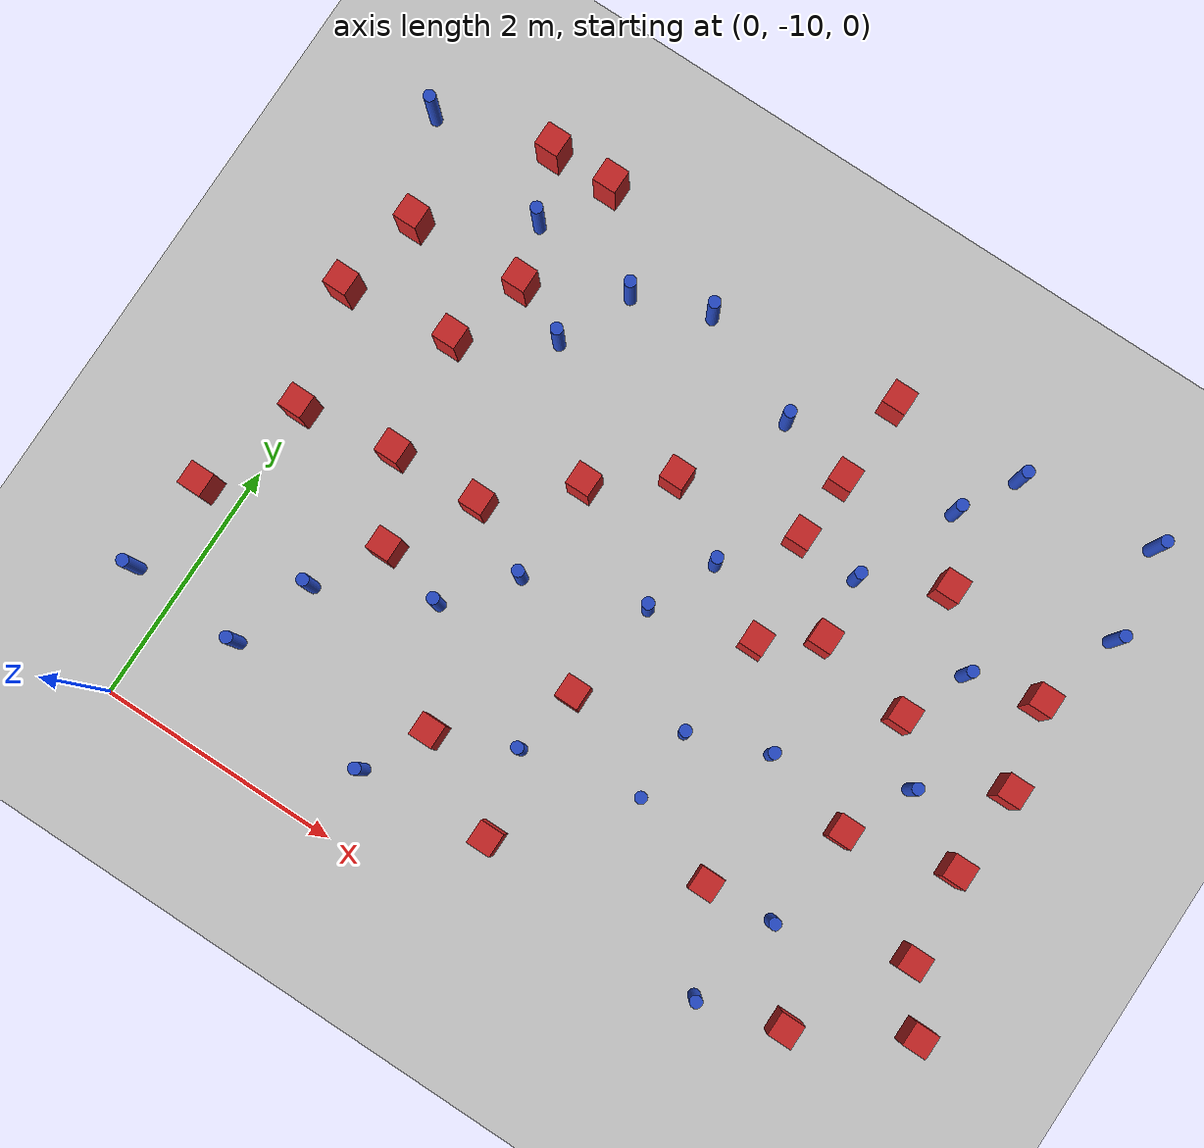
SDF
<sdf version="1.6">
 <world name="default">
  <model name="ground_plane">
   <static>1</static>
   <link name="link">
    <collision name="collision">
     <geometry><plane><normal>0 0 1</normal><size>100 100</size></plane></geometry>
     <surface><friction><ode><mu>100</mu><mu2>50</mu2></ode></friction></surface>
    </collision>
    <visual name="visual">
     <cast_shadows>0</cast_shadows>
     <geometry><plane><normal>0 0 1</normal><size>100 100</size></plane></geometry>
     <material>
      <ambient>1.0 1.0 1.0 1.0</ambient>
      <diffuse>0.8 0.8 0.8 1.0</diffuse>
      <specular>0.01 0.01 0.01 1.000000</specular>
     </material>
    </visual>
   </link>
  </model>
  <model name="square_post_obstacle5">
   <static>true</static>
   <pose>0.884554935236 -5.68348603818 8.22691968438e-08 7.2212513382e-06 -7.54495500217e-07 2.29674213826e-05</pose>
   <link name="link">
    <pose>0 0 0.25 0 -0 0</pose>
    <inertial>
     <mass>100</mass>
     <inertia>
      <ixx>0.166667</ixx>
      <ixy>0</ixy>
      <ixz>0</ixz>
      <iyy>0.166667</iyy>
      <iyz>0</iyz>
      <izz>0.166667</izz>
     </inertia>
    </inertial>
    <collision name="collision"><geometry><box><size>.2 .2 .5</size></box></geometry></collision>
    <visual name="visual">
     <geometry><box><size>.2 .2 .5</size></box></geometry>
     <material>
      <script><name>Gazebo/Red</name><uri>file://media/materials/scripts/gazebo.material</uri></script>
     </material>
    </visual>
   </link>
  </model>
  <model name="square_post_obstacle7">
   <static>true</static>
   <pose>1.55606180272 -7.26533026162 8.22691968438e-08 7.2212513382e-06 -7.54495500217e-07 2.29674213826e-05</pose>
   <link name="link">
    <pose>0 0 0.25 0 -0 0</pose>
    <inertial>
     <mass>100</mass>
     <inertia>
      <ixx>0.166667</ixx>
      <ixy>0</ixy>
      <ixz>0</ixz>
      <iyy>0.166667</iyy>
      <iyz>0</iyz>
      <izz>0.166667</izz>
     </inertia>
    </inertial>
    <collision name="collision"><geometry><box><size>.2 .2 .5</size></box></geometry></collision>
    <visual name="visual">
     <geometry><box><size>.2 .2 .5</size></box></geometry>
     <material>
      <script><name>Gazebo/Red</name><uri>file://media/materials/scripts/gazebo.material</uri></script>
     </material>
    </visual>
   </link>
  </model>
  <model name="pole_obstacle7">
   <static>true</static>
   <pose>4.25041789018 -6.17766045648 2.88873142074e-08 -9.90536690842e-09 4.60219948965e-07 -1.20965994976e-07</pose>
   <link name="link">
    <pose>0 0 0.3 0 -0 0</pose>
    <inertial>
     <mass>1</mass>
     <inertia><ixx>0.145833</ixx><ixy>0</ixy><ixz>0</ixz><iyy>0.145833</iyy><iyz>0</iyz><izz>0.125</izz></inertia>
    </inertial>
    <collision name="collision">
     <geometry><cylinder><radius>0.05</radius><length>.6</length></cylinder></geometry>
    </collision>
    <visual name="visual">
     <geometry><cylinder><radius>0.05</radius><length>.6</length></cylinder></geometry>
     <material>
      <script><name>Gazebo/Blue</name><uri>file://media/materials/scripts/gazebo.material</uri></script>
     </material>
    </visual>
   </link>
  </model>
  <model name="square_post_obstacle12">
   <static>true</static>
   <pose>2.14708013972 -6.70917561124 8.22691968438e-08 7.2212513382e-06 -7.54495500217e-07 2.29674213826e-05</pose>
   <link name="link">
    <pose>0 0 0.25 0 -0 0</pose>
    <inertial>
     <mass>100</mass>
     <inertia>
      <ixx>0.166667</ixx>
      <ixy>0</ixy>
      <ixz>0</ixz>
      <iyy>0.166667</iyy>
      <iyz>0</iyz>
      <izz>0.166667</izz>
     </inertia>
    </inertial>
    <collision name="collision"><geometry><box><size>.2 .2 .5</size></box></geometry></collision>
    <visual name="visual">
     <geometry><box><size>.2 .2 .5</size></box></geometry>
     <material>
      <script><name>Gazebo/Red</name><uri>file://media/materials/scripts/gazebo.material</uri></script>
     </material>
    </visual>
   </link>
  </model>
  <model name="pole_obstacle17">
   <static>true</static>
   <pose>0.841496908532 -8.48705982292 2.88873142074e-08 -9.90536690779e-09 4.60219948967e-07 -1.20965994975e-07</pose>
   <link name="link">
    <pose>0 0 0.3 0 -0 0</pose>
    <inertial>
     <mass>1</mass>
     <inertia><ixx>0.145833</ixx><ixy>0</ixy><ixz>0</ixz><iyy>0.145833</iyy><iyz>0</iyz><izz>0.125</izz></inertia>
    </inertial>
    <collision name="collision">
     <geometry><cylinder><radius>0.05</radius><length>.6</length></cylinder></geometry>
    </collision>
    <visual name="visual">
     <geometry><cylinder><radius>0.05</radius><length>.6</length></cylinder></geometry>
     <material>
      <script><name>Gazebo/Blue</name><uri>file://media/materials/scripts/gazebo.material</uri></script>
     </material>
    </visual>
   </link>
  </model>
  <model name="square_post_obstacle27">
   <static>true</static>
   <pose>3.0144751496 -9.32477972756 8.22691968438e-08 7.22125133819e-06 -7.54495500217e-07 2.29674213826e-05</pose>
   <link name="link">
    <pose>0 0 0.25 0 -0 0</pose>
    <inertial>
     <mass>100</mass>
     <inertia>
      <ixx>0.166667</ixx>
      <ixy>0</ixy>
      <ixz>0</ixz>
      <iyy>0.166667</iyy>
      <iyz>0</iyz>
      <izz>0.166667</izz>
     </inertia>
    </inertial>
    <collision name="collision"><geometry><box><size>.2 .2 .5</size></box></geometry></collision>
    <visual name="visual">
     <geometry><box><size>.2 .2 .5</size></box></geometry>
     <material>
      <script><name>Gazebo/Red</name><uri>file://media/materials/scripts/gazebo.material</uri></script>
     </material>
    </visual>
   </link>
  </model>
  <model name="pole_obstacle23">
   <static>true</static>
   <pose>1.72007324495 -8.07215050449 2.88873142074e-08 -9.90536690474e-09 4.60219948974e-07 -1.2096599497e-07</pose>
   <link name="link">
    <pose>0 0 0.3 0 -0 0</pose>
    <inertial>
     <mass>1</mass>
     <inertia><ixx>0.145833</ixx><ixy>0</ixy><ixz>0</ixz><iyy>0.145833</iyy><iyz>0</iyz><izz>0.125</izz></inertia>
    </inertial>
    <collision name="collision">
     <geometry><cylinder><radius>0.05</radius><length>.6</length></cylinder></geometry>
    </collision>
    <visual name="visual">
     <geometry><cylinder><radius>0.05</radius><length>.6</length></cylinder></geometry>
     <material>
      <script><name>Gazebo/Blue</name><uri>file://media/materials/scripts/gazebo.material</uri></script>
     </material>
    </visual>
   </link>
  </model>
  <model name="square_post_obstacle33">
   <static>true</static>
   <pose>2.70273354113 -6.28351806401 8.22691968438e-08 7.2212513382e-06 -7.54495500217e-07 2.29674213826e-05</pose>
   <link name="link">
    <pose>0 0 0.25 0 -0 0</pose>
    <inertial>
     <mass>100</mass>
     <inertia>
      <ixx>0.166667</ixx>
      <ixy>0</ixy>
      <ixz>0</ixz>
      <iyy>0.166667</iyy>
      <iyz>0</iyz>
      <izz>0.166667</izz>
     </inertia>
    </inertial>
    <collision name="collision"><geometry><box><size>.2 .2 .5</size></box></geometry></collision>
    <visual name="visual">
     <geometry><box><size>.2 .2 .5</size></box></geometry>
     <material>
      <script><name>Gazebo/Red</name><uri>file://media/materials/scripts/gazebo.material</uri></script>
     </material>
    </visual>
   </link>
  </model>
  <model name="pole_obstacle33">
   <static>true</static>
   <pose>2.13014091983 -7.55885595009 2.88873142074e-08 -9.90536689859e-09 4.60219948989e-07 -1.20965994961e-07</pose>
   <link name="link">
    <pose>0 0 0.3 0 -0 0</pose>
    <inertial>
     <mass>1</mass>
     <inertia><ixx>0.145833</ixx><ixy>0</ixy><ixz>0</ixz><iyy>0.145833</iyy><iyz>0</iyz><izz>0.125</izz></inertia>
    </inertial>
    <collision name="collision">
     <geometry><cylinder><radius>0.05</radius><length>.6</length></cylinder></geometry>
    </collision>
    <visual name="visual">
     <geometry><cylinder><radius>0.05</radius><length>.6</length></cylinder></geometry>
     <material>
      <script><name>Gazebo/Blue</name><uri>file://media/materials/scripts/gazebo.material</uri></script>
     </material>
    </visual>
   </link>
  </model>
  <model name="square_post_obstacle48">
   <static>true</static>
   <pose>3.78404851062 -4.89229251819 8.22691968438e-08 7.2212513382e-06 -7.54495500217e-07 2.29674213826e-05</pose>
   <link name="link">
    <pose>0 0 0.25 0 -0 0</pose>
    <inertial>
     <mass>100</mass>
     <inertia>
      <ixx>0.166667</ixx>
      <ixy>0</ixy>
      <ixz>0</ixz>
      <iyy>0.166667</iyy>
      <iyz>0</iyz>
      <izz>0.166667</izz>
     </inertia>
    </inertial>
    <collision name="collision"><geometry><box><size>.2 .2 .5</size></box></geometry></collision>
    <visual name="visual">
     <geometry><box><size>.2 .2 .5</size></box></geometry>
     <material>
      <script><name>Gazebo/Red</name><uri>file://media/materials/scripts/gazebo.material</uri></script>
     </material>
    </visual>
   </link>
  </model>
  <model name="square_post_obstacle56">
   <static>true</static>
   <pose>-0.0695081800152 -5.7257466203 8.22691968438e-08 7.2212513382e-06 -7.54495500217e-07 2.29674213826e-05</pose>
   <link name="link">
    <pose>0 0 0.25 0 -0 0</pose>
    <inertial>
     <mass>100</mass>
     <inertia>
      <ixx>0.166667</ixx>
      <ixy>0</ixy>
      <ixz>0</ixz>
      <iyy>0.166667</iyy>
      <iyz>0</iyz>
      <izz>0.166667</izz>
     </inertia>
    </inertial>
    <collision name="collision"><geometry><box><size>.2 .2 .5</size></box></geometry></collision>
    <visual name="visual">
     <geometry><box><size>.2 .2 .5</size></box></geometry>
     <material>
      <script><name>Gazebo/Red</name><uri>file://media/materials/scripts/gazebo.material</uri></script>
     </material>
    </visual>
   </link>
  </model>
  <model name="pole_obstacle58">
   <static>true</static>
   <pose>3.80412692736 -8.44848855763 2.88873142074e-08 -9.90536692318e-09 4.6021994893e-07 -1.20965994988e-07</pose>
   <link name="link">
    <pose>0 0 0.3 0 -0 0</pose>
    <inertial>
     <mass>1</mass>
     <inertia><ixx>0.145833</ixx><ixy>0</ixy><ixz>0</ixz><iyy>0.145833</iyy><iyz>0</iyz><izz>0.125</izz></inertia>
    </inertial>
    <collision name="collision">
     <geometry><cylinder><radius>0.05</radius><length>.6</length></cylinder></geometry>
    </collision>
    <visual name="visual">
     <geometry><cylinder><radius>0.05</radius><length>.6</length></cylinder></geometry>
     <material>
      <script><name>Gazebo/Blue</name><uri>file://media/materials/scripts/gazebo.material</uri></script>
     </material>
    </visual>
   </link>
  </model>
  <model name="square_post_obstacle62">
   <static>true</static>
   <pose>5.6103100675 -9.27098484616 8.22691968438e-08 7.22125133819e-06 -7.54495500217e-07 2.29674213826e-05</pose>
   <link name="link">
    <pose>0 0 0.25 0 -0 0</pose>
    <inertial>
     <mass>100</mass>
     <inertia>
      <ixx>0.166667</ixx>
      <ixy>0</ixy>
      <ixz>0</ixz>
      <iyy>0.166667</iyy>
      <iyz>0</iyz>
      <izz>0.166667</izz>
     </inertia>
    </inertial>
    <collision name="collision"><geometry><box><size>.2 .2 .5</size></box></geometry></collision>
    <visual name="visual">
     <geometry><box><size>.2 .2 .5</size></box></geometry>
     <material>
      <script><name>Gazebo/Red</name><uri>file://media/materials/scripts/gazebo.material</uri></script>
     </material>
    </visual>
   </link>
  </model>
  <model name="square_post_obstacle70">
   <static>true</static>
   <pose>0.814972331682 -7.28877649369 8.22691968438e-08 7.2212513382e-06 -7.54495500217e-07 2.29674213826e-05</pose>
   <link name="link">
    <pose>0 0 0.25 0 -0 0</pose>
    <inertial>
     <mass>100</mass>
     <inertia>
      <ixx>0.166667</ixx>
      <ixy>0</ixy>
      <ixz>0</ixz>
      <iyy>0.166667</iyy>
      <iyz>0</iyz>
      <izz>0.166667</izz>
     </inertia>
    </inertial>
    <collision name="collision"><geometry><box><size>.2 .2 .5</size></box></geometry></collision>
    <visual name="visual">
     <geometry><box><size>.2 .2 .5</size></box></geometry>
     <material>
      <script><name>Gazebo/Red</name><uri>file://media/materials/scripts/gazebo.material</uri></script>
     </material>
    </visual>
   </link>
  </model>
  <model name="pole_obstacle67">
   <static>true</static>
   <pose>6.01151102757 -4.73775907542 2.88873142074e-08 -9.90536690842e-09 4.60219948965e-07 -1.20965994976e-07</pose>
   <link name="link">
    <pose>0 0 0.3 0 -0 0</pose>
    <inertial>
     <mass>1</mass>
     <inertia><ixx>0.145833</ixx><ixy>0</ixy><ixz>0</ixz><iyy>0.145833</iyy><iyz>0</iyz><izz>0.125</izz></inertia>
    </inertial>
    <collision name="collision">
     <geometry><cylinder><radius>0.05</radius><length>.6</length></cylinder></geometry>
    </collision>
    <visual name="visual">
     <geometry><cylinder><radius>0.05</radius><length>.6</length></cylinder></geometry>
     <material>
      <script><name>Gazebo/Blue</name><uri>file://media/materials/scripts/gazebo.material</uri></script>
     </material>
    </visual>
   </link>
  </model>
  <model name="pole_obstacle71">
   <static>true</static>
   <pose>-0.348502553733 -9.09916075996 2.88873142074e-08 -9.90536691079e-09 4.6021994896e-07 -1.2096599498e-07</pose>
   <link name="link">
    <pose>0 0 0.3 0 -0 0</pose>
    <inertial>
     <mass>1</mass>
     <inertia><ixx>0.145833</ixx><ixy>0</ixy><ixz>0</ixz><iyy>0.145833</iyy><iyz>0</iyz><izz>0.125</izz></inertia>
    </inertial>
    <collision name="collision">
     <geometry><cylinder><radius>0.05</radius><length>.6</length></cylinder></geometry>
    </collision>
    <visual name="visual">
     <geometry><cylinder><radius>0.05</radius><length>.6</length></cylinder></geometry>
     <material>
      <script><name>Gazebo/Blue</name><uri>file://media/materials/scripts/gazebo.material</uri></script>
     </material>
    </visual>
   </link>
  </model>
  <model name="pole_obstacle73">
   <static>true</static>
   <pose>3.1580665488 -5.4530728534 2.88873142074e-08 -9.90536689859e-09 4.60219948989e-07 -1.20965994961e-07</pose>
   <link name="link">
    <pose>0 0 0.3 0 -0 0</pose>
    <inertial>
     <mass>1</mass>
     <inertia><ixx>0.145833</ixx><ixy>0</ixy><ixz>0</ixz><iyy>0.145833</iyy><iyz>0</iyz><izz>0.125</izz></inertia>
    </inertial>
    <collision name="collision">
     <geometry><cylinder><radius>0.05</radius><length>.6</length></cylinder></geometry>
    </collision>
    <visual name="visual">
     <geometry><cylinder><radius>0.05</radius><length>.6</length></cylinder></geometry>
     <material>
      <script><name>Gazebo/Blue</name><uri>file://media/materials/scripts/gazebo.material</uri></script>
     </material>
    </visual>
   </link>
  </model>
  <model name="pole_obstacle79">
   <static>true</static>
   <pose>0.612384202883 -9.14737824431 2.88873142074e-08 -9.90536690779e-09 4.60219948967e-07 -1.20965994975e-07</pose>
   <link name="link">
    <pose>0 0 0.3 0 -0 0</pose>
    <inertial>
     <mass>1</mass>
     <inertia><ixx>0.145833</ixx><ixy>0</ixy><ixz>0</ixz><iyy>0.145833</iyy><iyz>0</iyz><izz>0.125</izz></inertia>
    </inertial>
    <collision name="collision">
     <geometry><cylinder><radius>0.05</radius><length>.6</length></cylinder></geometry>
    </collision>
    <visual name="visual">
     <geometry><cylinder><radius>0.05</radius><length>.6</length></cylinder></geometry>
     <material>
      <script><name>Gazebo/Blue</name><uri>file://media/materials/scripts/gazebo.material</uri></script>
     </material>
    </visual>
   </link>
  </model>
  <model name="square_post_obstacle79">
   <static>true</static>
   <pose>3.7329081014 -6.147804471 8.22691968438e-08 7.2212513382e-06 -7.54495500217e-07 2.29674213826e-05</pose>
   <link name="link">
    <pose>0 0 0.25 0 -0 0</pose>
    <inertial>
     <mass>100</mass>
     <inertia>
      <ixx>0.166667</ixx>
      <ixy>0</ixy>
      <ixz>0</ixz>
      <iyy>0.166667</iyy>
      <iyz>0</iyz>
      <izz>0.166667</izz>
     </inertia>
    </inertial>
    <collision name="collision"><geometry><box><size>.2 .2 .5</size></box></geometry></collision>
    <visual name="visual">
     <geometry><box><size>.2 .2 .5</size></box></geometry>
     <material>
      <script><name>Gazebo/Red</name><uri>file://media/materials/scripts/gazebo.material</uri></script>
     </material>
    </visual>
   </link>
  </model>
  <model name="pole_obstacle84">
   <static>true</static>
   <pose>5.45637696834 -7.28297900864 2.88873142074e-08 -9.90536690842e-09 4.60219948965e-07 -1.20965994976e-07</pose>
   <link name="link">
    <pose>0 0 0.3 0 -0 0</pose>
    <inertial>
     <mass>1</mass>
     <inertia><ixx>0.145833</ixx><ixy>0</ixy><ixz>0</ixz><iyy>0.145833</iyy><iyz>0</iyz><izz>0.125</izz></inertia>
    </inertial>
    <collision name="collision">
     <geometry><cylinder><radius>0.05</radius><length>.6</length></cylinder></geometry>
    </collision>
    <visual name="visual">
     <geometry><cylinder><radius>0.05</radius><length>.6</length></cylinder></geometry>
     <material>
      <script><name>Gazebo/Blue</name><uri>file://media/materials/scripts/gazebo.material</uri></script>
     </material>
    </visual>
   </link>
  </model>
  <model name="pole_obstacle90">
   <static>true</static>
   <pose>1.94061850437 -9.42228404839 2.88873142074e-08 -9.90536690474e-09 4.60219948974e-07 -1.2096599497e-07</pose>
   <link name="link">
    <pose>0 0 0.3 0 -0 0</pose>
    <inertial>
     <mass>1</mass>
     <inertia><ixx>0.145833</ixx><ixy>0</ixy><ixz>0</ixz><iyy>0.145833</iyy><iyz>0</iyz><izz>0.125</izz></inertia>
    </inertial>
    <collision name="collision">
     <geometry><cylinder><radius>0.05</radius><length>.6</length></cylinder></geometry>
    </collision>
    <visual name="visual">
     <geometry><cylinder><radius>0.05</radius><length>.6</length></cylinder></geometry>
     <material>
      <script><name>Gazebo/Blue</name><uri>file://media/materials/scripts/gazebo.material</uri></script>
     </material>
    </visual>
   </link>
  </model>
  <model name="pole_obstacle91">
   <static>true</static>
   <pose>4.44073487184 -7.63886266071 2.88873142074e-08 -9.90536690842e-09 4.60219948965e-07 -1.20965994976e-07</pose>
   <link name="link">
    <pose>0 0 0.3 0 -0 0</pose>
    <inertial>
     <mass>1</mass>
     <inertia><ixx>0.145833</ixx><ixy>0</ixy><ixz>0</ixz><iyy>0.145833</iyy><iyz>0</iyz><izz>0.125</izz></inertia>
    </inertial>
    <collision name="collision">
     <geometry><cylinder><radius>0.05</radius><length>.6</length></cylinder></geometry>
    </collision>
    <visual name="visual">
     <geometry><cylinder><radius>0.05</radius><length>.6</length></cylinder></geometry>
     <material>
      <script><name>Gazebo/Blue</name><uri>file://media/materials/scripts/gazebo.material</uri></script>
     </material>
    </visual>
   </link>
  </model>
  <model name="square_post_obstacle85">
   <static>true</static>
   <pose>2.21650781867 -8.90144093768 8.22691968438e-08 7.22125133819e-06 -7.54495500217e-07 2.29674213826e-05</pose>
   <link name="link">
    <pose>0 0 0.25 0 -0 0</pose>
    <inertial>
     <mass>100</mass>
     <inertia>
      <ixx>0.166667</ixx>
      <ixy>0</ixy>
      <ixz>0</ixz>
      <iyy>0.166667</iyy>
      <iyz>0</iyz>
      <izz>0.166667</izz>
     </inertia>
    </inertial>
    <collision name="collision"><geometry><box><size>.2 .2 .5</size></box></geometry></collision>
    <visual name="visual">
     <geometry><box><size>.2 .2 .5</size></box></geometry>
     <material>
      <script><name>Gazebo/Red</name><uri>file://media/materials/scripts/gazebo.material</uri></script>
     </material>
    </visual>
   </link>
  </model>
  <model name="square_post_obstacle87">
   <static>true</static>
   <pose>3.87876587095 -6.99782058586 8.22691968438e-08 7.22125133819e-06 -7.54495500217e-07 2.29674213826e-05</pose>
   <link name="link">
    <pose>0 0 0.25 0 -0 0</pose>
    <inertial>
     <mass>100</mass>
     <inertia>
      <ixx>0.166667</ixx>
      <ixy>0</ixy>
      <ixz>0</ixz>
      <iyy>0.166667</iyy>
      <iyz>0</iyz>
      <izz>0.166667</izz>
     </inertia>
    </inertial>
    <collision name="collision"><geometry><box><size>.2 .2 .5</size></box></geometry></collision>
    <visual name="visual">
     <geometry><box><size>.2 .2 .5</size></box></geometry>
     <material>
      <script><name>Gazebo/Red</name><uri>file://media/materials/scripts/gazebo.material</uri></script>
     </material>
    </visual>
   </link>
  </model>
  <model name="pole_obstacle106">
   <static>true</static>
   <pose>2.23678772007 -5.0718978327 2.88873142074e-08 -9.90536689859e-09 4.60219948989e-07 -1.20965994961e-07</pose>
   <link name="link">
    <pose>0 0 0.3 0 -0 0</pose>
    <inertial>
     <mass>1</mass>
     <inertia><ixx>0.145833</ixx><ixy>0</ixy><ixz>0</ixz><iyy>0.145833</iyy><iyz>0</iyz><izz>0.125</izz></inertia>
    </inertial>
    <collision name="collision">
     <geometry><cylinder><radius>0.05</radius><length>.6</length></cylinder></geometry>
    </collision>
    <visual name="visual">
     <geometry><cylinder><radius>0.05</radius><length>.6</length></cylinder></geometry>
     <material>
      <script><name>Gazebo/Blue</name><uri>file://media/materials/scripts/gazebo.material</uri></script>
     </material>
    </visual>
   </link>
  </model>
  <model name="square_post_obstacle94">
   <static>true</static>
   <pose>3.76303756401 -5.60661279271 8.22691968438e-08 7.2212513382e-06 -7.54495500217e-07 2.29674213826e-05</pose>
   <link name="link">
    <pose>0 0 0.25 0 -0 0</pose>
    <inertial>
     <mass>100</mass>
     <inertia>
      <ixx>0.166667</ixx>
      <ixy>0</ixy>
      <ixz>0</ixz>
      <iyy>0.166667</iyy>
      <iyz>0</iyz>
      <izz>0.166667</izz>
     </inertia>
    </inertial>
    <collision name="collision"><geometry><box><size>.2 .2 .5</size></box></geometry></collision>
    <visual name="visual">
     <geometry><box><size>.2 .2 .5</size></box></geometry>
     <material>
      <script><name>Gazebo/Red</name><uri>file://media/materials/scripts/gazebo.material</uri></script>
     </material>
    </visual>
   </link>
  </model>
  <model name="square_post_obstacle99">
   <static>true</static>
   <pose>5.0989144237 -6.86395251007 8.22691968438e-08 7.2212513382e-06 -7.54495500217e-07 2.29674213826e-05</pose>
   <link name="link">
    <pose>0 0 0.25 0 -0 0</pose>
    <inertial>
     <mass>100</mass>
     <inertia>
      <ixx>0.166667</ixx>
      <ixy>0</ixy>
      <ixz>0</ixz>
      <iyy>0.166667</iyy>
      <iyz>0</iyz>
      <izz>0.166667</izz>
     </inertia>
    </inertial>
    <collision name="collision"><geometry><box><size>.2 .2 .5</size></box></geometry></collision>
    <visual name="visual">
     <geometry><box><size>.2 .2 .5</size></box></geometry>
     <material>
      <script><name>Gazebo/Red</name><uri>file://media/materials/scripts/gazebo.material</uri></script>
     </material>
    </visual>
   </link>
  </model>
  <model name="square_post_obstacle100">
   <static>true</static>
   <pose>4.55235017081 -8.70953090875 8.22691968438e-08 7.2212513382e-06 -7.54495500217e-07 2.29674213826e-05</pose>
   <link name="link">
    <pose>0 0 0.25 0 -0 0</pose>
    <inertial>
     <mass>100</mass>
     <inertia>
      <ixx>0.166667</ixx>
      <ixy>0</ixy>
      <ixz>0</ixz>
      <iyy>0.166667</iyy>
      <iyz>0</iyz>
      <izz>0.166667</izz>
     </inertia>
    </inertial>
    <collision name="collision"><geometry><box><size>.2 .2 .5</size></box></geometry></collision>
    <visual name="visual">
     <geometry><box><size>.2 .2 .5</size></box></geometry>
     <material>
      <script><name>Gazebo/Red</name><uri>file://media/materials/scripts/gazebo.material</uri></script>
     </material>
    </visual>
   </link>
  </model>
  <model name="pole_obstacle115">
   <static>true</static>
   <pose>6.127169274 -5.50140581768 2.88873142074e-08 -9.90536690842e-09 4.60219948965e-07 -1.20965994976e-07</pose>
   <link name="link">
    <pose>0 0 0.3 0 -0 0</pose>
    <inertial>
     <mass>1</mass>
     <inertia><ixx>0.145833</ixx><ixy>0</ixy><ixz>0</ixz><iyy>0.145833</iyy><iyz>0</iyz><izz>0.125</izz></inertia>
    </inertial>
    <collision name="collision">
     <geometry><cylinder><radius>0.05</radius><length>.6</length></cylinder></geometry>
    </collision>
    <visual name="visual">
     <geometry><cylinder><radius>0.05</radius><length>.6</length></cylinder></geometry>
     <material>
      <script><name>Gazebo/Blue</name><uri>file://media/materials/scripts/gazebo.material</uri></script>
     </material>
    </visual>
   </link>
  </model>
  <model name="square_post_obstacle106">
   <static>true</static>
   <pose>0.514018701214 -4.67254723086 8.22691968438e-08 7.22125133819e-06 -7.54495500217e-07 2.29674213826e-05</pose>
   <link name="link">
    <pose>0 0 0.25 0 -0 0</pose>
    <inertial>
     <mass>100</mass>
     <inertia>
      <ixx>0.166667</ixx>
      <ixy>0</ixy>
      <ixz>0</ixz>
      <iyy>0.166667</iyy>
      <iyz>0</iyz>
      <izz>0.166667</izz>
     </inertia>
    </inertial>
    <collision name="collision"><geometry><box><size>.2 .2 .5</size></box></geometry></collision>
    <visual name="visual">
     <geometry><box><size>.2 .2 .5</size></box></geometry>
     <material>
      <script><name>Gazebo/Red</name><uri>file://media/materials/scripts/gazebo.material</uri></script>
     </material>
    </visual>
   </link>
  </model>
  <model name="square_post_obstacle111">
   <static>true</static>
   <pose>6.07237083826 -6.8949102178 8.22691968438e-08 7.2212513382e-06 -7.54495500217e-07 2.29674213826e-05</pose>
   <link name="link">
    <pose>0 0 0.25 0 -0 0</pose>
    <inertial>
     <mass>100</mass>
     <inertia>
      <ixx>0.166667</ixx>
      <ixy>0</ixy>
      <ixz>0</ixz>
      <iyy>0.166667</iyy>
      <iyz>0</iyz>
      <izz>0.166667</izz>
     </inertia>
    </inertial>
    <collision name="collision"><geometry><box><size>.2 .2 .5</size></box></geometry></collision>
    <visual name="visual">
     <geometry><box><size>.2 .2 .5</size></box></geometry>
     <material>
      <script><name>Gazebo/Red</name><uri>file://media/materials/scripts/gazebo.material</uri></script>
     </material>
    </visual>
   </link>
  </model>
  <model name="square_post_obstacle112">
   <static>true</static>
   <pose>2.95464507836 -8.07482498071 8.22691968438e-08 7.2212513382e-06 -7.54495500217e-07 2.29674213826e-05</pose>
   <link name="link">
    <pose>0 0 0.25 0 -0 0</pose>
    <inertial>
     <mass>100</mass>
     <inertia>
      <ixx>0.166667</ixx>
      <ixy>0</ixy>
      <ixz>0</ixz>
      <iyy>0.166667</iyy>
      <iyz>0</iyz>
      <izz>0.166667</izz>
     </inertia>
    </inertial>
    <collision name="collision"><geometry><box><size>.2 .2 .5</size></box></geometry></collision>
    <visual name="visual">
     <geometry><box><size>.2 .2 .5</size></box></geometry>
     <material>
      <script><name>Gazebo/Red</name><uri>file://media/materials/scripts/gazebo.material</uri></script>
     </material>
    </visual>
   </link>
  </model>
  <model name="pole_obstacle122">
   <static>true</static>
   <pose>5.11686508193 -8.67368600597 2.88873142074e-08 -9.9053668967e-09 4.60219948993e-07 -1.20965994957e-07</pose>
   <link name="link">
    <pose>0 0 0.3 0 -0 0</pose>
    <inertial>
     <mass>1</mass>
     <inertia><ixx>0.145833</ixx><ixy>0</ixy><ixz>0</ixz><iyy>0.145833</iyy><iyz>0</iyz><izz>0.125</izz></inertia>
    </inertial>
    <collision name="collision">
     <geometry><cylinder><radius>0.05</radius><length>.6</length></cylinder></geometry>
    </collision>
    <visual name="visual">
     <geometry><cylinder><radius>0.05</radius><length>.6</length></cylinder></geometry>
     <material>
      <script><name>Gazebo/Blue</name><uri>file://media/materials/scripts/gazebo.material</uri></script>
     </material>
    </visual>
   </link>
  </model>
  <model name="pole_obstacle125">
   <static>true</static>
   <pose>4.87763539398 -4.8628818913 2.88873142074e-08 -9.90536690842e-09 4.60219948965e-07 -1.20965994976e-07</pose>
   <link name="link">
    <pose>0 0 0.3 0 -0 0</pose>
    <inertial>
     <mass>1</mass>
     <inertia><ixx>0.145833</ixx><ixy>0</ixy><ixz>0</ixz><iyy>0.145833</iyy><iyz>0</iyz><izz>0.125</izz></inertia>
    </inertial>
    <collision name="collision">
     <geometry><cylinder><radius>0.05</radius><length>.6</length></cylinder></geometry>
    </collision>
    <visual name="visual">
     <geometry><cylinder><radius>0.05</radius><length>.6</length></cylinder></geometry>
     <material>
      <script><name>Gazebo/Blue</name><uri>file://media/materials/scripts/gazebo.material</uri></script>
     </material>
    </visual>
   </link>
  </model>
  <model name="square_post_obstacle113">
   <static>true</static>
   <pose>4.29532509865 -6.70218752728 8.22691968438e-08 7.2212513382e-06 -7.54495500217e-07 2.29674213826e-05</pose>
   <link name="link">
    <pose>0 0 0.25 0 -0 0</pose>
    <inertial>
     <mass>100</mass>
     <inertia>
      <ixx>0.166667</ixx>
      <ixy>0</ixy>
      <ixz>0</ixz>
      <iyy>0.166667</iyy>
      <iyz>0</iyz>
      <izz>0.166667</izz>
     </inertia>
    </inertial>
    <collision name="collision"><geometry><box><size>.2 .2 .5</size></box></geometry></collision>
    <visual name="visual">
     <geometry><box><size>.2 .2 .5</size></box></geometry>
     <material>
      <script><name>Gazebo/Red</name><uri>file://media/materials/scripts/gazebo.material</uri></script>
     </material>
    </visual>
   </link>
  </model>
  <model name="pole_obstacle134">
   <static>true</static>
   <pose>3.30228848578 -6.66658823507 2.88873142074e-08 -9.90536689859e-09 4.60219948989e-07 -1.20965994961e-07</pose>
   <link name="link">
    <pose>0 0 0.3 0 -0 0</pose>
    <inertial>
     <mass>1</mass>
     <inertia><ixx>0.145833</ixx><ixy>0</ixy><ixz>0</ixz><iyy>0.145833</iyy><iyz>0</iyz><izz>0.125</izz></inertia>
    </inertial>
    <collision name="collision">
     <geometry><cylinder><radius>0.05</radius><length>.6</length></cylinder></geometry>
    </collision>
    <visual name="visual">
     <geometry><cylinder><radius>0.05</radius><length>.6</length></cylinder></geometry>
     <material>
      <script><name>Gazebo/Blue</name><uri>file://media/materials/scripts/gazebo.material</uri></script>
     </material>
    </visual>
   </link>
  </model>
  <model name="square_post_obstacle119">
   <static>true</static>
   <pose>1.1731424906 -7.9316139327 8.22691968438e-08 7.2212513382e-06 -7.54495500217e-07 2.29674213826e-05</pose>
   <link name="link">
    <pose>0 0 0.25 0 -0 0</pose>
    <inertial>
     <mass>100</mass>
     <inertia>
      <ixx>0.166667</ixx>
      <ixy>0</ixy>
      <ixz>0</ixz>
      <iyy>0.166667</iyy>
      <iyz>0</iyz>
      <izz>0.166667</izz>
     </inertia>
    </inertial>
    <collision name="collision"><geometry><box><size>.2 .2 .5</size></box></geometry></collision>
    <visual name="visual">
     <geometry><box><size>.2 .2 .5</size></box></geometry>
     <material>
      <script><name>Gazebo/Red</name><uri>file://media/materials/scripts/gazebo.material</uri></script>
     </material>
    </visual>
   </link>
  </model>
  <model name="square_post_obstacle130">
   <static>true</static>
   <pose>5.90901818749 -6.2031550911 8.22691968438e-08 7.2212513382e-06 -7.54495500217e-07 2.29674213826e-05</pose>
   <link name="link">
    <pose>0 0 0.25 0 -0 0</pose>
    <inertial>
     <mass>100</mass>
     <inertia>
      <ixx>0.166667</ixx>
      <ixy>0</ixy>
      <ixz>0</ixz>
      <iyy>0.166667</iyy>
      <iyz>0</iyz>
      <izz>0.166667</izz>
     </inertia>
    </inertial>
    <collision name="collision"><geometry><box><size>.2 .2 .5</size></box></geometry></collision>
    <visual name="visual">
     <geometry><box><size>.2 .2 .5</size></box></geometry>
     <material>
      <script><name>Gazebo/Red</name><uri>file://media/materials/scripts/gazebo.material</uri></script>
     </material>
    </visual>
   </link>
  </model>
  <model name="square_post_obstacle132">
   <static>true</static>
   <pose>-0.225993755279 -6.44140842663 8.22691968438e-08 7.2212513382e-06 -7.54495500217e-07 2.29674213826e-05</pose>
   <link name="link">
    <pose>0 0 0.25 0 -0 0</pose>
    <inertial>
     <mass>100</mass>
     <inertia>
      <ixx>0.166667</ixx>
      <ixy>0</ixy>
      <ixz>0</ixz>
      <iyy>0.166667</iyy>
      <iyz>0</iyz>
      <izz>0.166667</izz>
     </inertia>
    </inertial>
    <collision name="collision"><geometry><box><size>.2 .2 .5</size></box></geometry></collision>
    <visual name="visual">
     <geometry><box><size>.2 .2 .5</size></box></geometry>
     <material>
      <script><name>Gazebo/Red</name><uri>file://media/materials/scripts/gazebo.material</uri></script>
     </material>
    </visual>
   </link>
  </model>
  <model name="square_post_obstacle133">
   <static>true</static>
   <pose>4.8800960678 -5.86652532964 8.22691968438e-08 7.2212513382e-06 -7.54495500217e-07 2.29674213826e-05</pose>
   <link name="link">
    <pose>0 0 0.25 0 -0 0</pose>
    <inertial>
     <mass>100</mass>
     <inertia>
      <ixx>0.166667</ixx>
      <ixy>0</ixy>
      <ixz>0</ixz>
      <iyy>0.166667</iyy>
      <iyz>0</iyz>
      <izz>0.166667</izz>
     </inertia>
    </inertial>
    <collision name="collision"><geometry><box><size>.2 .2 .5</size></box></geometry></collision>
    <visual name="visual">
     <geometry><box><size>.2 .2 .5</size></box></geometry>
     <material>
      <script><name>Gazebo/Red</name><uri>file://media/materials/scripts/gazebo.material</uri></script>
     </material>
    </visual>
   </link>
  </model>
  <model name="pole_obstacle152">
   <static>true</static>
   <pose>4.94157586347 -9.45278291059 2.88873142074e-08 -9.9053668967e-09 4.60219948993e-07 -1.20965994957e-07</pose>
   <link name="link">
    <pose>0 0 0.3 0 -0 0</pose>
    <inertial>
     <mass>1</mass>
     <inertia><ixx>0.145833</ixx><ixy>0</ixy><ixz>0</ixz><iyy>0.145833</iyy><iyz>0</iyz><izz>0.125</izz></inertia>
    </inertial>
    <collision name="collision">
     <geometry><cylinder><radius>0.05</radius><length>.6</length></cylinder></geometry>
    </collision>
    <visual name="visual">
     <geometry><cylinder><radius>0.05</radius><length>.6</length></cylinder></geometry>
     <material>
      <script><name>Gazebo/Blue</name><uri>file://media/materials/scripts/gazebo.material</uri></script>
     </material>
    </visual>
   </link>
  </model>
  <model name="square_post_obstacle143">
   <static>true</static>
   <pose>5.1972403082 -7.82537028488 8.22691968438e-08 7.2212513382e-06 -7.54495500217e-07 2.29674213826e-05</pose>
   <link name="link">
    <pose>0 0 0.25 0 -0 0</pose>
    <inertial>
     <mass>100</mass>
     <inertia>
      <ixx>0.166667</ixx>
      <ixy>0</ixy>
      <ixz>0</ixz>
      <iyy>0.166667</iyy>
      <iyz>0</iyz>
      <izz>0.166667</izz>
     </inertia>
    </inertial>
    <collision name="collision"><geometry><box><size>.2 .2 .5</size></box></geometry></collision>
    <visual name="visual">
     <geometry><box><size>.2 .2 .5</size></box></geometry>
     <material>
      <script><name>Gazebo/Red</name><uri>file://media/materials/scripts/gazebo.material</uri></script>
     </material>
    </visual>
   </link>
  </model>
  <model name="pole_obstacle154">
   <static>true</static>
   <pose>3.0641587065 -7.23152208212 2.88873142074e-08 -9.90536689859e-09 4.60219948989e-07 -1.20965994961e-07</pose>
   <link name="link">
    <pose>0 0 0.3 0 -0 0</pose>
    <inertial>
     <mass>1</mass>
     <inertia><ixx>0.145833</ixx><ixy>0</ixy><ixz>0</ixz><iyy>0.145833</iyy><iyz>0</iyz><izz>0.125</izz></inertia>
    </inertial>
    <collision name="collision">
     <geometry><cylinder><radius>0.05</radius><length>.6</length></cylinder></geometry>
    </collision>
    <visual name="visual">
     <geometry><cylinder><radius>0.05</radius><length>.6</length></cylinder></geometry>
     <material>
      <script><name>Gazebo/Blue</name><uri>file://media/materials/scripts/gazebo.material</uri></script>
     </material>
    </visual>
   </link>
  </model>
  <model name="pole_obstacle160">
   <static>true</static>
   <pose>1.36253921821 -5.88881871358 2.88873142074e-08 -9.90536689852e-09 4.60219948989e-07 -1.2096599496e-07</pose>
   <link name="link">
    <pose>0 0 0.3 0 -0 0</pose>
    <inertial>
     <mass>1</mass>
     <inertia><ixx>0.145833</ixx><ixy>0</ixy><ixz>0</ixz><iyy>0.145833</iyy><iyz>0</iyz><izz>0.125</izz></inertia>
    </inertial>
    <collision name="collision">
     <geometry><cylinder><radius>0.05</radius><length>.6</length></cylinder></geometry>
    </collision>
    <visual name="visual">
     <geometry><cylinder><radius>0.05</radius><length>.6</length></cylinder></geometry>
     <material>
      <script><name>Gazebo/Blue</name><uri>file://media/materials/scripts/gazebo.material</uri></script>
     </material>
    </visual>
   </link>
  </model>
  <model name="square_post_obstacle156">
   <static>true</static>
   <pose>6.0534162319 -7.61185839415 8.22691968438e-08 7.2212513382e-06 -7.54495500217e-07 2.29674213826e-05</pose>
   <link name="link">
    <pose>0 0 0.25 0 -0 0</pose>
    <inertial>
     <mass>100</mass>
     <inertia>
      <ixx>0.166667</ixx>
      <ixy>0</ixy>
      <ixz>0</ixz>
      <iyy>0.166667</iyy>
      <iyz>0</iyz>
      <izz>0.166667</izz>
     </inertia>
    </inertial>
    <collision name="collision"><geometry><box><size>.2 .2 .5</size></box></geometry></collision>
    <visual name="visual">
     <geometry><box><size>.2 .2 .5</size></box></geometry>
     <material>
      <script><name>Gazebo/Red</name><uri>file://media/materials/scripts/gazebo.material</uri></script>
     </material>
    </visual>
   </link>
  </model>
  <model name="square_post_obstacle157">
   <static>true</static>
   <pose>6.13375808082 -8.34772837343 8.22691968438e-08 7.22125133819e-06 -7.54495500217e-07 2.29674213826e-05</pose>
   <link name="link">
    <pose>0 0 0.25 0 -0 0</pose>
    <inertial>
     <mass>100</mass>
     <inertia>
      <ixx>0.166667</ixx>
      <ixy>0</ixy>
      <ixz>0</ixz>
      <iyy>0.166667</iyy>
      <iyz>0</iyz>
      <izz>0.166667</izz>
     </inertia>
    </inertial>
    <collision name="collision"><geometry><box><size>.2 .2 .5</size></box></geometry></collision>
    <visual name="visual">
     <geometry><box><size>.2 .2 .5</size></box></geometry>
     <material>
      <script><name>Gazebo/Red</name><uri>file://media/materials/scripts/gazebo.material</uri></script>
     </material>
    </visual>
   </link>
  </model>
  <model name="pole_obstacle165">
   <static>true</static>
   <pose>0.724017570237 -5.20192849183 2.88873142074e-08 -9.90536689661e-09 4.60219948993e-07 -1.20965994957e-07</pose>
   <link name="link">
    <pose>0 0 0.3 0 -0 0</pose>
    <inertial>
     <mass>1</mass>
     <inertia><ixx>0.145833</ixx><ixy>0</ixy><ixz>0</ixz><iyy>0.145833</iyy><iyz>0</iyz><izz>0.125</izz></inertia>
    </inertial>
    <collision name="collision">
     <geometry><cylinder><radius>0.05</radius><length>.6</length></cylinder></geometry>
    </collision>
    <visual name="visual">
     <geometry><cylinder><radius>0.05</radius><length>.6</length></cylinder></geometry>
     <material>
      <script><name>Gazebo/Blue</name><uri>file://media/materials/scripts/gazebo.material</uri></script>
     </material>
    </visual>
   </link>
  </model>
  <model name="pole_obstacle178">
   <static>true</static>
   <pose>4.60379510426 -5.34160305449 2.88873142074e-08 -9.90536690842e-09 4.60219948965e-07 -1.20965994976e-07</pose>
   <link name="link">
    <pose>0 0 0.3 0 -0 0</pose>
    <inertial>
     <mass>1</mass>
     <inertia><ixx>0.145833</ixx><ixy>0</ixy><ixz>0</ixz><iyy>0.145833</iyy><iyz>0</iyz><izz>0.125</izz></inertia>
    </inertial>
    <collision name="collision">
     <geometry><cylinder><radius>0.05</radius><length>.6</length></cylinder></geometry>
    </collision>
    <visual name="visual">
     <geometry><cylinder><radius>0.05</radius><length>.6</length></cylinder></geometry>
     <material>
      <script><name>Gazebo/Blue</name><uri>file://media/materials/scripts/gazebo.material</uri></script>
     </material>
    </visual>
   </link>
  </model>
  <model name="pole_obstacle184">
   <static>true</static>
   <pose>1.6231592077 -5.2855580852 2.88873142074e-08 -9.90536689852e-09 4.60219948989e-07 -1.2096599496e-07</pose>
   <link name="link">
    <pose>0 0 0.3 0 -0 0</pose>
    <inertial>
     <mass>1</mass>
     <inertia><ixx>0.145833</ixx><ixy>0</ixy><ixz>0</ixz><iyy>0.145833</iyy><iyz>0</iyz><izz>0.125</izz></inertia>
    </inertial>
    <collision name="collision">
     <geometry><cylinder><radius>0.05</radius><length>.6</length></cylinder></geometry>
    </collision>
    <visual name="visual">
     <geometry><cylinder><radius>0.05</radius><length>.6</length></cylinder></geometry>
     <material>
      <script><name>Gazebo/Blue</name><uri>file://media/materials/scripts/gazebo.material</uri></script>
     </material>
    </visual>
   </link>
  </model>
  <model name="pole_obstacle186">
   <static>true</static>
   <pose>2.84770117227 -8.64249526421 2.88873142074e-08 -9.90536692318e-09 4.6021994893e-07 -1.20965994988e-07</pose>
   <link name="link">
    <pose>0 0 0.3 0 -0 0</pose>
    <inertial>
     <mass>1</mass>
     <inertia><ixx>0.145833</ixx><ixy>0</ixy><ixz>0</ixz><iyy>0.145833</iyy><iyz>0</iyz><izz>0.125</izz></inertia>
    </inertial>
    <collision name="collision">
     <geometry><cylinder><radius>0.05</radius><length>.6</length></cylinder></geometry>
    </collision>
    <visual name="visual">
     <geometry><cylinder><radius>0.05</radius><length>.6</length></cylinder></geometry>
     <material>
      <script><name>Gazebo/Blue</name><uri>file://media/materials/scripts/gazebo.material</uri></script>
     </material>
    </visual>
   </link>
  </model>
  <model name="pole_obstacle187">
   <static>true</static>
   <pose>3.80888870458 -7.86282306281 2.88873142074e-08 -9.90536689859e-09 4.60219948989e-07 -1.20965994961e-07</pose>
   <link name="link">
    <pose>0 0 0.3 0 -0 0</pose>
    <inertial>
     <mass>1</mass>
     <inertia><ixx>0.145833</ixx><ixy>0</ixy><ixz>0</ixz><iyy>0.145833</iyy><iyz>0</iyz><izz>0.125</izz></inertia>
    </inertial>
    <collision name="collision">
     <geometry><cylinder><radius>0.05</radius><length>.6</length></cylinder></geometry>
    </collision>
    <visual name="visual">
     <geometry><cylinder><radius>0.05</radius><length>.6</length></cylinder></geometry>
     <material>
      <script><name>Gazebo/Blue</name><uri>file://media/materials/scripts/gazebo.material</uri></script>
     </material>
    </visual>
   </link>
  </model>
  <model name="square_post_obstacle183">
   <static>true</static>
   <pose>-0.269292079998 -8.2987065197 8.22691968438e-08 7.22125133819e-06 -7.54495500217e-07 2.29674213826e-05</pose>
   <link name="link">
    <pose>0 0 0.25 0 -0 0</pose>
    <inertial>
     <mass>100</mass>
     <inertia>
      <ixx>0.166667</ixx>
      <ixy>0</ixy>
      <ixz>0</ixz>
      <iyy>0.166667</iyy>
      <iyz>0</iyz>
      <izz>0.166667</izz>
     </inertia>
    </inertial>
    <collision name="collision"><geometry><box><size>.2 .2 .5</size></box></geometry></collision>
    <visual name="visual">
     <geometry><box><size>.2 .2 .5</size></box></geometry>
     <material>
      <script><name>Gazebo/Red</name><uri>file://media/materials/scripts/gazebo.material</uri></script>
     </material>
    </visual>
   </link>
  </model>
  <model name="square_post_obstacle190">
   <static>true</static>
   <pose>0.0211109372762 -7.39960330193 8.22691968438e-08 7.22125133819e-06 -7.54495500217e-07 2.29674213826e-05</pose>
   <link name="link">
    <pose>0 0 0.25 0 -0 0</pose>
    <inertial>
     <mass>100</mass>
     <inertia>
      <ixx>0.166667</ixx>
      <ixy>0</ixy>
      <ixz>0</ixz>
      <iyy>0.166667</iyy>
      <iyz>0</iyz>
      <izz>0.166667</izz>
     </inertia>
    </inertial>
    <collision name="collision"><geometry><box><size>.2 .2 .5</size></box></geometry></collision>
    <visual name="visual">
     <geometry><box><size>.2 .2 .5</size></box></geometry>
     <material>
      <script><name>Gazebo/Red</name><uri>file://media/materials/scripts/gazebo.material</uri></script>
     </material>
    </visual>
   </link>
  </model>
  <model name="square_post_obstacle191">
   <static>true</static>
   <pose>6.46474462538 -8.79412660811 8.22691968438e-08 7.2212513382e-06 -7.54495500217e-07 2.29674213826e-05</pose>
   <link name="link">
    <pose>0 0 0.25 0 -0 0</pose>
    <inertial>
     <mass>100</mass>
     <inertia>
      <ixx>0.166667</ixx>
      <ixy>0</ixy>
      <ixz>0</ixz>
      <iyy>0.166667</iyy>
      <iyz>0</iyz>
      <izz>0.166667</izz>
     </inertia>
    </inertial>
    <collision name="collision"><geometry><box><size>.2 .2 .5</size></box></geometry></collision>
    <visual name="visual">
     <geometry><box><size>.2 .2 .5</size></box></geometry>
     <material>
      <script><name>Gazebo/Red</name><uri>file://media/materials/scripts/gazebo.material</uri></script>
     </material>
    </visual>
   </link>
  </model>
  <model name="pole_obstacle195">
   <static>true</static>
   <pose>5.32976083336 -6.33909220947 2.88873142074e-08 -9.90536690842e-09 4.60219948965e-07 -1.20965994976e-07</pose>
   <link name="link">
    <pose>0 0 0.3 0 -0 0</pose>
    <inertial>
     <mass>1</mass>
     <inertia><ixx>0.145833</ixx><ixy>0</ixy><ixz>0</ixz><iyy>0.145833</iyy><iyz>0</iyz><izz>0.125</izz></inertia>
    </inertial>
    <collision name="collision">
     <geometry><cylinder><radius>0.05</radius><length>.6</length></cylinder></geometry>
    </collision>
    <visual name="visual">
     <geometry><cylinder><radius>0.05</radius><length>.6</length></cylinder></geometry>
     <material>
      <script><name>Gazebo/Blue</name><uri>file://media/materials/scripts/gazebo.material</uri></script>
     </material>
    </visual>
   </link>
  </model>
  <model name="pole_obstacle202">
   <static>true</static>
   <pose>-0.428437943355 -4.92844652307 2.88873142074e-08 -9.90536689683e-09 4.60219948993e-07 -1.20965994957e-07</pose>
   <link name="link">
    <pose>0 0 0.3 0 -0 0</pose>
    <inertial>
     <mass>1</mass>
     <inertia><ixx>0.145833</ixx><ixy>0</ixy><ixz>0</ixz><iyy>0.145833</iyy><iyz>0</iyz><izz>0.125</izz></inertia>
    </inertial>
    <collision name="collision">
     <geometry><cylinder><radius>0.05</radius><length>.6</length></cylinder></geometry>
    </collision>
    <visual name="visual">
     <geometry><cylinder><radius>0.05</radius><length>.6</length></cylinder></geometry>
     <material>
      <script><name>Gazebo/Blue</name><uri>file://media/materials/scripts/gazebo.material</uri></script>
     </material>
    </visual>
   </link>
  </model>
  <model name="square_post_obstacle211">
   <static>true</static>
   <pose>1.03700604678 -4.66634772974 8.22691968438e-08 7.22125133819e-06 -7.54495500217e-07 2.29674213826e-05</pose>
   <link name="link">
    <pose>0 0 0.25 0 -0 0</pose>
    <inertial>
     <mass>100</mass>
     <inertia>
      <ixx>0.166667</ixx>
      <ixy>0</ixy>
      <ixz>0</ixz>
      <iyy>0.166667</iyy>
      <iyz>0</iyz>
      <izz>0.166667</izz>
     </inertia>
    </inertial>
    <collision name="collision"><geometry><box><size>.2 .2 .5</size></box></geometry></collision>
    <visual name="visual">
     <geometry><box><size>.2 .2 .5</size></box></geometry>
     <material>
      <script><name>Gazebo/Red</name><uri>file://media/materials/scripts/gazebo.material</uri></script>
     </material>
    </visual>
   </link>
  </model>
  <model name="square_post_obstacle246">
   <static>true</static>
   <pose>0.689144032622 -6.33002003534 8.22691968438e-08 7.22125133819e-06 -7.54495500217e-07 2.29674213826e-05</pose>
   <link name="link">
    <pose>0 0 0.25 0 -0 0</pose>
    <inertial>
     <mass>100</mass>
     <inertia>
      <ixx>0.166667</ixx>
      <ixy>0</ixy>
      <ixz>0</ixz>
      <iyy>0.166667</iyy>
      <iyz>0</iyz>
      <izz>0.166667</izz>
     </inertia>
    </inertial>
    <collision name="collision"><geometry><box><size>.2 .2 .5</size></box></geometry></collision>
    <visual name="visual">
     <geometry><box><size>.2 .2 .5</size></box></geometry>
     <material>
      <script><name>Gazebo/Red</name><uri>file://media/materials/scripts/gazebo.material</uri></script>
     </material>
    </visual>
   </link>
  </model>
 </world>
</sdf>
